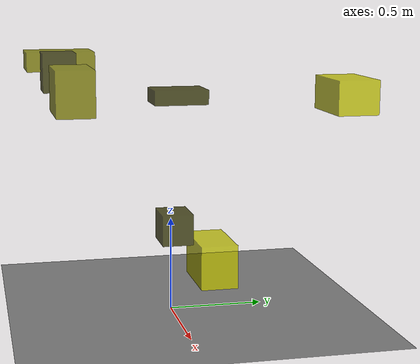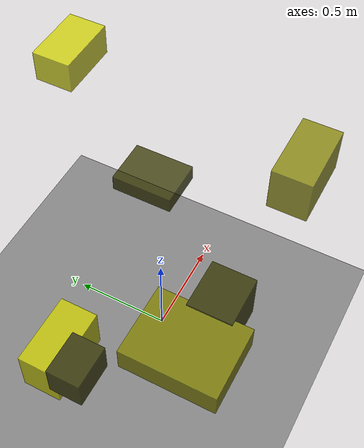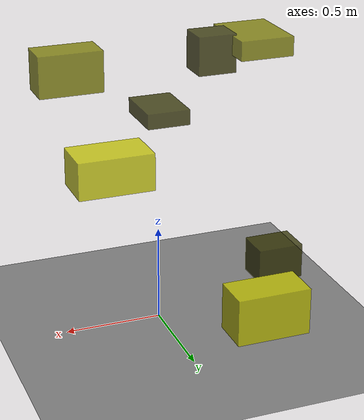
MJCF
<?xml version="1.0"?>
<mujoco model="obstacle_scene">
  <compiler angle="radian" coordinate="local"/>
  <option timestep="0.001" gravity="0 0 -9.81"/>

  <asset>
    <material name="obstacle_mat" rgba="0.8 0.8 0.0 0.8"/>
    <material name="ground_mat" rgba="0.5 0.5 0.5 1"/>
  </asset>

  <worldbody>
    <!-- Ground plane -->
    <geom name="ground" type="plane" size="3 3 0.1" material="ground_mat"/>

    <!-- Obstacles -->
    <body name="obstacle_0" pos="-0.504533 -0.532864 1.244046">
      <geom name="obs_0" type="box" size="0.106369 0.091051 0.107067" rgba="0.2 0.2 0.0 0.8"/>
    </body>
    <body name="obstacle_1" pos="0.304870 -0.542284 1.223013">
      <geom name="obs_1" type="box" size="0.173746 0.092665 0.112105" rgba="0.5 0.5 0.0 0.8"/>
    </body>
    <body name="obstacle_2" pos="0.503406 0.772256 1.197914">
      <geom name="obs_2" type="box" size="0.167698 0.101420 0.083325" rgba="0.8 0.8 0.0 0.8"/>
    </body>
    <body name="obstacle_3" pos="-0.587185 0.141473 0.306257">
      <geom name="obs_3" type="box" size="0.118866 0.091318 0.090724" rgba="0.2 0.2 0.0 0.8"/>
    </body>
    <body name="obstacle_4" pos="-0.737136 -0.507114 1.289400">
      <geom name="obs_4" type="box" size="0.150346 0.191348 0.053564" rgba="0.5 0.5 0.0 0.8"/>
    </body>
    <body name="obstacle_5" pos="-0.458908 0.340400 0.127425">
      <geom name="obs_5" type="box" size="0.197728 0.107032 0.126842" rgba="0.8 0.8 0.0 0.8"/>
    </body>
    <body name="obstacle_6" pos="0.008386 0.037988 1.153899">
      <geom name="obs_6" type="box" size="0.107380 0.139486 0.037967" rgba="0.2 0.2 0.0 0.8"/>
    </body>
  </worldbody>
</mujoco>
